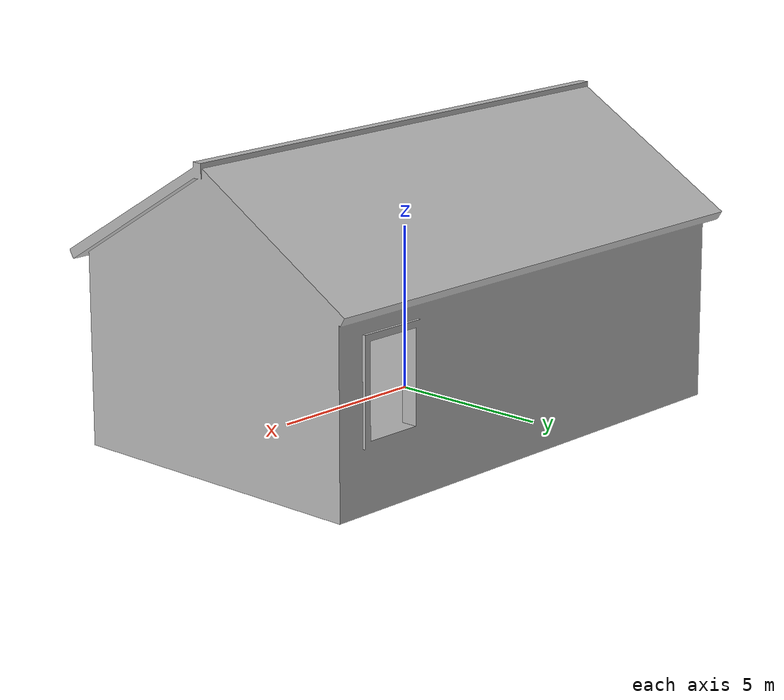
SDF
<?xml version="1.0" ?>
<sdf version="1.5">
  <model name="barn">
    <link name="link">
      <inertial>
        <pose>0 0 0.06 0 0 0</pose>
        <mass>0.390</mass>
        <inertia>
          <ixx>0.00055575</ixx>
          <ixy>0</ixy>
          <ixz>0</ixz>
          <iyy>0.00055575</iyy>
          <iyz>0</iyz>
          <izz>0.0001755</izz>
        </inertia>
      </inertial>
      <visual name="visual">
        <pose>0 0 0 0 0 0</pose>
        <geometry>
          <mesh>
            <uri>model://barn/meshes/barn_stone_large.dae</uri>
            <size>0.1 0.1 0.1</size>
          </mesh>
        </geometry>
      </visual>
    </link>
  </model>
</sdf>
